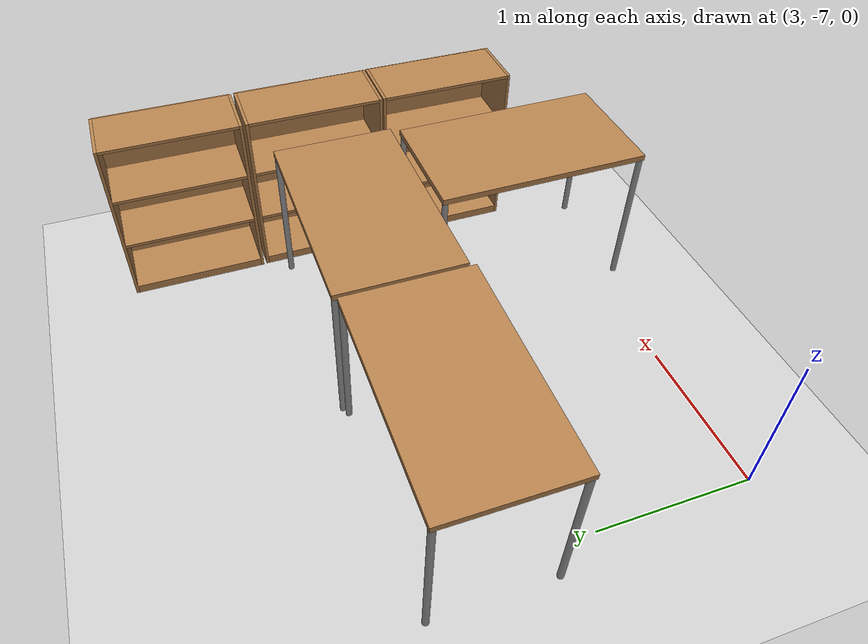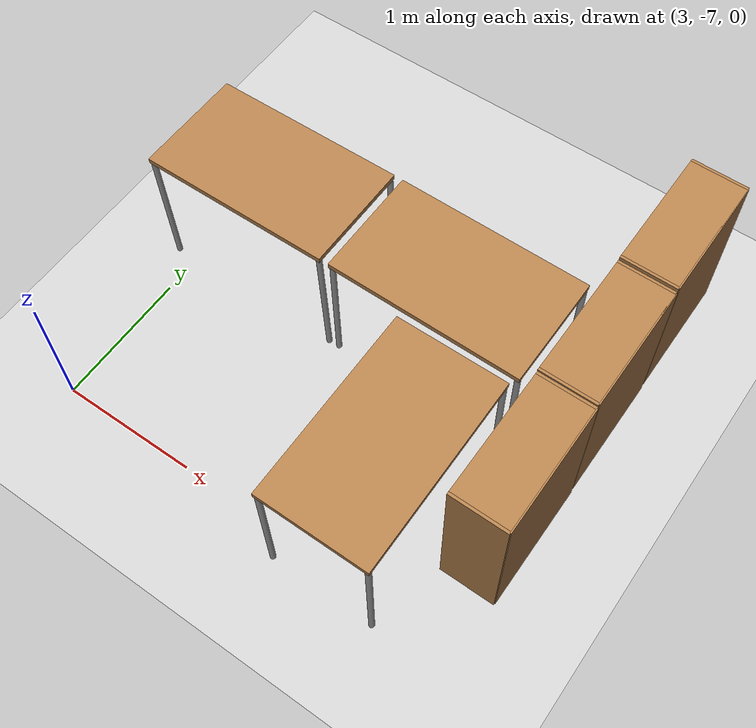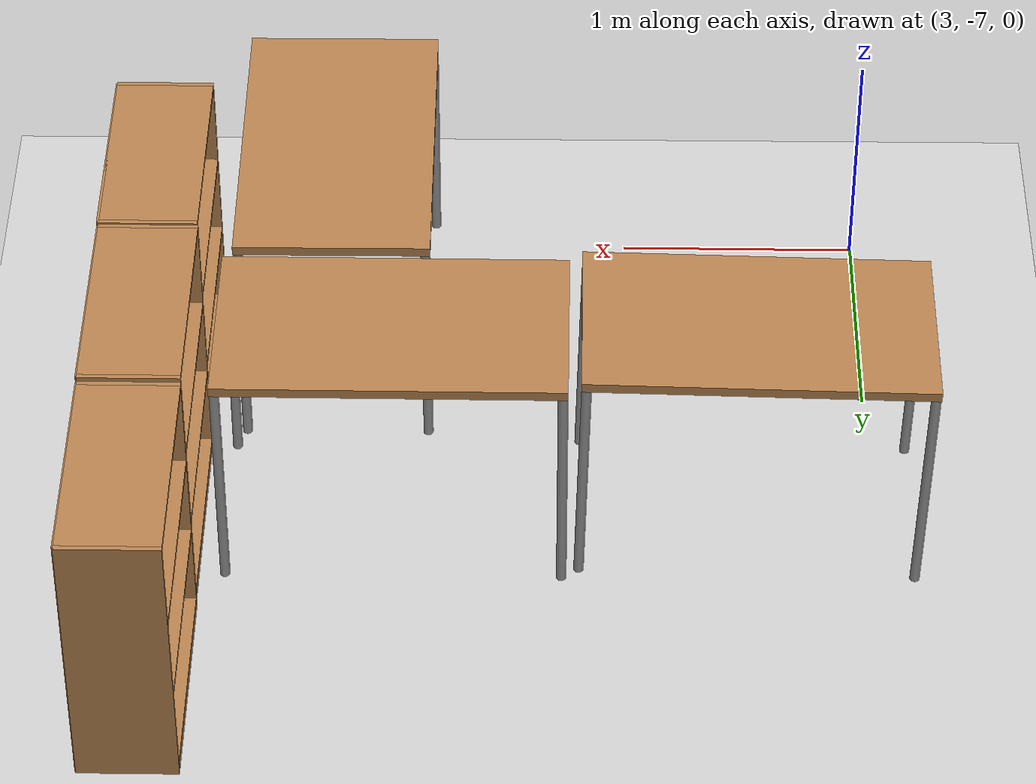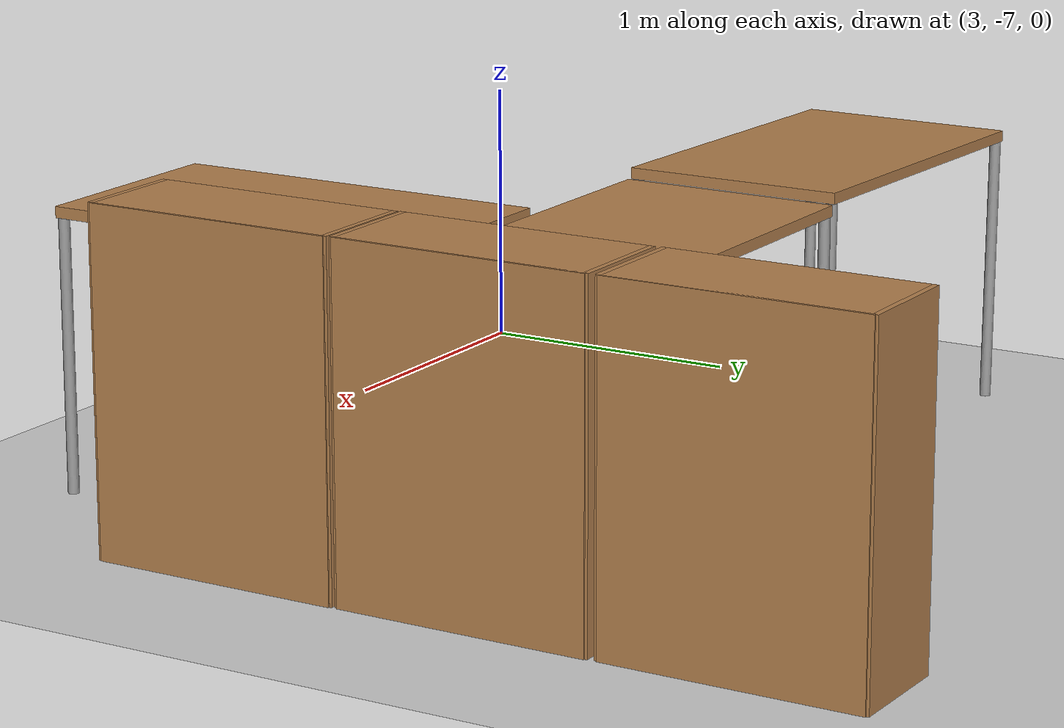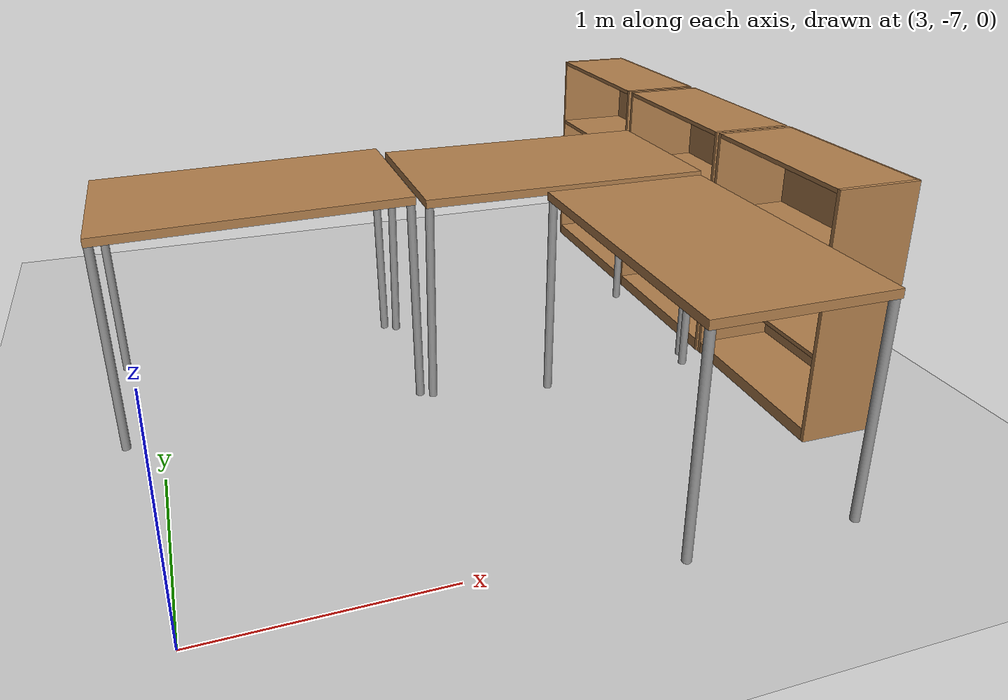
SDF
<sdf version="1.6">
 <world name="default">
  <model name="ground_plane">
   <static>1</static>
   <link name="link">
    <collision name="collision">
     <geometry><plane><normal>0 0 1</normal><size>100 100</size></plane></geometry>
     <surface><friction><ode><mu>100</mu><mu2>50</mu2></ode></friction></surface>
    </collision>
    <visual name="visual">
     <cast_shadows>0</cast_shadows>
     <geometry><plane><normal>0 0 1</normal><size>100 100</size></plane></geometry>
     <material>
      <script><uri>file://media/materials/scripts/gazebo.material</uri><name>Gazebo/Grey</name></script>
     </material>
    </visual>
   </link>
  </model>
  <model name="bookshelf_sidepose_clone_0">
   <link name="link">
    <pose>0.214811 -0.123316 0 0 0 -1.57547</pose>
    <inertial><mass>1</mass></inertial>
    <visual name="visual1">
     <pose>0 0.005 0.6 0 -0 0</pose>
     <geometry><box><size>0.9 0.01 1.2</size></box></geometry>
     <material>
      <script><uri>file://media/materials/scripts/gazebo.material</uri><name>Gazebo/Wood</name></script>
      <ambient>1 1 1 1</ambient>
      <diffuse>1 1 1 1</diffuse>
      <specular>0.2 0.2 0.2 1</specular>
      <emissive>0 0 0 1</emissive>
     </material>
    </visual>
    <visual name="visual2">
     <pose>0.45 -0.195 0.6 0 -0 0</pose>
     <geometry><box><size>0.02 0.4 1.2</size></box></geometry>
     <material>
      <script><uri>file://media/materials/scripts/gazebo.material</uri><name>Gazebo/Wood</name></script>
      <ambient>1 1 1 1</ambient>
      <diffuse>1 1 1 1</diffuse>
      <specular>0.2 0.2 0.2 1</specular>
      <emissive>0 0 0 1</emissive>
     </material>
    </visual>
    <visual name="visual3">
     <pose>-0.45 -0.195 0.6 0 -0 0</pose>
     <geometry><box><size>0.02 0.4 1.2</size></box></geometry>
     <material>
      <script><uri>file://media/materials/scripts/gazebo.material</uri><name>Gazebo/Wood</name></script>
      <ambient>1 1 1 1</ambient>
      <diffuse>1 1 1 1</diffuse>
      <specular>0.2 0.2 0.2 1</specular>
      <emissive>0 0 0 1</emissive>
     </material>
    </visual>
    <visual name="visual4">
     <pose>0 -0.195 0.03 0 -0 0</pose>
     <geometry><box><size>0.88 0.4 0.06</size></box></geometry>
     <material>
      <script><uri>file://media/materials/scripts/gazebo.material</uri><name>Gazebo/Wood</name></script>
      <ambient>1 1 1 1</ambient>
      <diffuse>1 1 1 1</diffuse>
      <specular>0.2 0.2 0.2 1</specular>
      <emissive>0 0 0 1</emissive>
     </material>
    </visual>
    <visual name="visual6">
     <pose>0 -0.195 0.43 0 -0 0</pose>
     <geometry><box><size>0.88 0.4 0.02</size></box></geometry>
     <material>
      <script><uri>file://media/materials/scripts/gazebo.material</uri><name>Gazebo/Wood</name></script>
      <ambient>1 1 1 1</ambient>
      <diffuse>1 1 1 1</diffuse>
      <specular>0.2 0.2 0.2 1</specular>
      <emissive>0 0 0 1</emissive>
     </material>
    </visual>
    <visual name="visual5">
     <pose>0 -0.195 1.19 0 -0 0</pose>
     <geometry><box><size>0.88 0.4 0.02</size></box></geometry>
     <material>
      <script><uri>file://media/materials/scripts/gazebo.material</uri><name>Gazebo/Wood</name></script>
      <ambient>1 1 1 1</ambient>
      <diffuse>1 1 1 1</diffuse>
      <specular>0.2 0.2 0.2 1</specular>
      <emissive>0 0 0 1</emissive>
     </material>
    </visual>
    <visual name="visual7">
     <pose>0 -0.195 0.8 0 -0 0</pose>
     <geometry><box><size>0.88 0.4 0.02</size></box></geometry>
     <material>
      <script><uri>file://media/materials/scripts/gazebo.material</uri><name>Gazebo/Wood</name></script>
      <ambient>1 1 1 1</ambient>
      <diffuse>1 1 1 1</diffuse>
      <specular>0.2 0.2 0.2 1</specular>
      <emissive>0 0 0 1</emissive>
     </material>
    </visual>
    <collision name="back">
     <pose>0 0.005 0.6 0 -0 0</pose>
     <geometry><box><size>0.9 0.01 1.2</size></box></geometry>
     <surface>
      <friction>
       <ode><mu>1</mu><mu2>1</mu2><fdir1>0 0 0</fdir1><slip1>0</slip1><slip2>0</slip2></ode>
       <torsional>
        <coefficient>1</coefficient>
        <patch_radius>0</patch_radius>
        <surface_radius>0</surface_radius>
        <use_patch_radius>1</use_patch_radius>
        <ode><slip>0</slip></ode>
       </torsional>
      </friction>
      <bounce><restitution_coefficient>0</restitution_coefficient><threshold>1e+06</threshold></bounce>
      <contact>
       <collide_without_contact>0</collide_without_contact>
       <collide_without_contact_bitmask>1</collide_without_contact_bitmask>
       <collide_bitmask>1</collide_bitmask>
       <ode>
        <soft_cfm>0</soft_cfm>
        <soft_erp>0.2</soft_erp>
        <kp>1e+13</kp>
        <kd>1</kd>
        <max_vel>0.01</max_vel>
        <min_depth>0</min_depth>
       </ode>
       <bullet>
        <split_impulse>1</split_impulse>
        <split_impulse_penetration_threshold>-0.01</split_impulse_penetration_threshold>
        <soft_cfm>0</soft_cfm>
        <soft_erp>0.2</soft_erp>
        <kp>1e+13</kp>
        <kd>1</kd>
       </bullet>
      </contact>
     </surface>
    </collision>
    <collision name="left_side">
     <pose>0.45 -0.195 0.6 0 -0 0</pose>
     <geometry><box><size>0.02 0.4 1.2</size></box></geometry>
     <surface>
      <friction>
       <ode><mu>1</mu><mu2>1</mu2><fdir1>0 0 0</fdir1><slip1>0</slip1><slip2>0</slip2></ode>
       <torsional>
        <coefficient>1</coefficient>
        <patch_radius>0</patch_radius>
        <surface_radius>0</surface_radius>
        <use_patch_radius>1</use_patch_radius>
        <ode><slip>0</slip></ode>
       </torsional>
      </friction>
      <bounce><restitution_coefficient>0</restitution_coefficient><threshold>1e+06</threshold></bounce>
      <contact>
       <collide_without_contact>0</collide_without_contact>
       <collide_without_contact_bitmask>1</collide_without_contact_bitmask>
       <collide_bitmask>1</collide_bitmask>
       <ode>
        <soft_cfm>0</soft_cfm>
        <soft_erp>0.2</soft_erp>
        <kp>1e+13</kp>
        <kd>1</kd>
        <max_vel>0.01</max_vel>
        <min_depth>0</min_depth>
       </ode>
       <bullet>
        <split_impulse>1</split_impulse>
        <split_impulse_penetration_threshold>-0.01</split_impulse_penetration_threshold>
        <soft_cfm>0</soft_cfm>
        <soft_erp>0.2</soft_erp>
        <kp>1e+13</kp>
        <kd>1</kd>
       </bullet>
      </contact>
     </surface>
    </collision>
    <collision name="right_side">
     <pose>-0.45 -0.195 0.6 0 -0 0</pose>
     <geometry><box><size>0.02 0.4 1.2</size></box></geometry>
     <surface>
      <friction>
       <ode><mu>1</mu><mu2>1</mu2><fdir1>0 0 0</fdir1><slip1>0</slip1><slip2>0</slip2></ode>
       <torsional>
        <coefficient>1</coefficient>
        <patch_radius>0</patch_radius>
        <surface_radius>0</surface_radius>
        <use_patch_radius>1</use_patch_radius>
        <ode><slip>0</slip></ode>
       </torsional>
      </friction>
      <bounce><restitution_coefficient>0</restitution_coefficient><threshold>1e+06</threshold></bounce>
      <contact>
       <collide_without_contact>0</collide_without_contact>
       <collide_without_contact_bitmask>1</collide_without_contact_bitmask>
       <collide_bitmask>1</collide_bitmask>
       <ode>
        <soft_cfm>0</soft_cfm>
        <soft_erp>0.2</soft_erp>
        <kp>1e+13</kp>
        <kd>1</kd>
        <max_vel>0.01</max_vel>
        <min_depth>0</min_depth>
       </ode>
       <bullet>
        <split_impulse>1</split_impulse>
        <split_impulse_penetration_threshold>-0.01</split_impulse_penetration_threshold>
        <soft_cfm>0</soft_cfm>
        <soft_erp>0.2</soft_erp>
        <kp>1e+13</kp>
        <kd>1</kd>
       </bullet>
      </contact>
     </surface>
    </collision>
    <collision name="bottom">
     <pose>0 -0.195 0.03 0 -0 0</pose>
     <geometry><box><size>0.88 0.4 0.06</size></box></geometry>
     <surface>
      <friction>
       <ode><mu>1</mu><mu2>1</mu2><fdir1>0 0 0</fdir1><slip1>0</slip1><slip2>0</slip2></ode>
       <torsional>
        <coefficient>1</coefficient>
        <patch_radius>0</patch_radius>
        <surface_radius>0</surface_radius>
        <use_patch_radius>1</use_patch_radius>
        <ode><slip>0</slip></ode>
       </torsional>
      </friction>
      <bounce><restitution_coefficient>0</restitution_coefficient><threshold>1e+06</threshold></bounce>
      <contact>
       <collide_without_contact>0</collide_without_contact>
       <collide_without_contact_bitmask>1</collide_without_contact_bitmask>
       <collide_bitmask>1</collide_bitmask>
       <ode>
        <soft_cfm>0</soft_cfm>
        <soft_erp>0.2</soft_erp>
        <kp>1e+13</kp>
        <kd>1</kd>
        <max_vel>0.01</max_vel>
        <min_depth>0</min_depth>
       </ode>
       <bullet>
        <split_impulse>1</split_impulse>
        <split_impulse_penetration_threshold>-0.01</split_impulse_penetration_threshold>
        <soft_cfm>0</soft_cfm>
        <soft_erp>0.2</soft_erp>
        <kp>1e+13</kp>
        <kd>1</kd>
       </bullet>
      </contact>
     </surface>
    </collision>
    <collision name="low_shelf">
     <pose>0 -0.195 0.43 0 -0 0</pose>
     <geometry><box><size>0.88 0.4 0.02</size></box></geometry>
     <surface>
      <friction>
       <ode><mu>1</mu><mu2>1</mu2><fdir1>0 0 0</fdir1><slip1>0</slip1><slip2>0</slip2></ode>
       <torsional>
        <coefficient>1</coefficient>
        <patch_radius>0</patch_radius>
        <surface_radius>0</surface_radius>
        <use_patch_radius>1</use_patch_radius>
        <ode><slip>0</slip></ode>
       </torsional>
      </friction>
      <bounce><restitution_coefficient>0</restitution_coefficient><threshold>1e+06</threshold></bounce>
      <contact>
       <collide_without_contact>0</collide_without_contact>
       <collide_without_contact_bitmask>1</collide_without_contact_bitmask>
       <collide_bitmask>1</collide_bitmask>
       <ode>
        <soft_cfm>0</soft_cfm>
        <soft_erp>0.2</soft_erp>
        <kp>1e+13</kp>
        <kd>1</kd>
        <max_vel>0.01</max_vel>
        <min_depth>0</min_depth>
       </ode>
       <bullet>
        <split_impulse>1</split_impulse>
        <split_impulse_penetration_threshold>-0.01</split_impulse_penetration_threshold>
        <soft_cfm>0</soft_cfm>
        <soft_erp>0.2</soft_erp>
        <kp>1e+13</kp>
        <kd>1</kd>
       </bullet>
      </contact>
     </surface>
    </collision>
    <collision name="top">
     <pose>0 -0.195 1.19 0 -0 0</pose>
     <geometry><box><size>0.88 0.4 0.02</size></box></geometry>
     <surface>
      <friction>
       <ode><mu>1</mu><mu2>1</mu2><fdir1>0 0 0</fdir1><slip1>0</slip1><slip2>0</slip2></ode>
       <torsional>
        <coefficient>1</coefficient>
        <patch_radius>0</patch_radius>
        <surface_radius>0</surface_radius>
        <use_patch_radius>1</use_patch_radius>
        <ode><slip>0</slip></ode>
       </torsional>
      </friction>
      <bounce><restitution_coefficient>0</restitution_coefficient><threshold>1e+06</threshold></bounce>
      <contact>
       <collide_without_contact>0</collide_without_contact>
       <collide_without_contact_bitmask>1</collide_without_contact_bitmask>
       <collide_bitmask>1</collide_bitmask>
       <ode>
        <soft_cfm>0</soft_cfm>
        <soft_erp>0.2</soft_erp>
        <kp>1e+13</kp>
        <kd>1</kd>
        <max_vel>0.01</max_vel>
        <min_depth>0</min_depth>
       </ode>
       <bullet>
        <split_impulse>1</split_impulse>
        <split_impulse_penetration_threshold>-0.01</split_impulse_penetration_threshold>
        <soft_cfm>0</soft_cfm>
        <soft_erp>0.2</soft_erp>
        <kp>1e+13</kp>
        <kd>1</kd>
       </bullet>
      </contact>
     </surface>
    </collision>
    <collision name="high_shelf">
     <pose>0 -0.195 0.8 0 -0 0</pose>
     <geometry><box><size>0.88 0.4 0.02</size></box></geometry>
     <surface>
      <friction>
       <ode><mu>1</mu><mu2>1</mu2><fdir1>0 0 0</fdir1><slip1>0</slip1><slip2>0</slip2></ode>
       <torsional>
        <coefficient>1</coefficient>
        <patch_radius>0</patch_radius>
        <surface_radius>0</surface_radius>
        <use_patch_radius>1</use_patch_radius>
        <ode><slip>0</slip></ode>
       </torsional>
      </friction>
      <bounce><restitution_coefficient>0</restitution_coefficient><threshold>1e+06</threshold></bounce>
      <contact>
       <collide_without_contact>0</collide_without_contact>
       <collide_without_contact_bitmask>1</collide_without_contact_bitmask>
       <collide_bitmask>1</collide_bitmask>
       <ode>
        <soft_cfm>0</soft_cfm>
        <soft_erp>0.2</soft_erp>
        <kp>1e+13</kp>
        <kd>1</kd>
        <max_vel>0.01</max_vel>
        <min_depth>0</min_depth>
       </ode>
       <bullet>
        <split_impulse>1</split_impulse>
        <split_impulse_penetration_threshold>-0.01</split_impulse_penetration_threshold>
        <soft_cfm>0</soft_cfm>
        <soft_erp>0.2</soft_erp>
        <kp>1e+13</kp>
        <kd>1</kd>
       </bullet>
      </contact>
     </surface>
    </collision>
   </link>
   <static>1</static>
   <pose>5.91709 -6.04119 0 0 -0 0</pose>
  </model>
  <model name="bookshelf_sidepose_clone_1">
   <link name="link">
    <pose>0.214811 -0.123316 0 0 0 -1.57547</pose>
    <inertial><mass>1</mass></inertial>
    <visual name="visual1">
     <pose>0 0.005 0.6 0 -0 0</pose>
     <geometry><box><size>0.9 0.01 1.2</size></box></geometry>
     <material>
      <script><uri>file://media/materials/scripts/gazebo.material</uri><name>Gazebo/Wood</name></script>
      <ambient>1 1 1 1</ambient>
      <diffuse>1 1 1 1</diffuse>
      <specular>0.2 0.2 0.2 1</specular>
      <emissive>0 0 0 1</emissive>
     </material>
    </visual>
    <visual name="visual2">
     <pose>0.45 -0.195 0.6 0 -0 0</pose>
     <geometry><box><size>0.02 0.4 1.2</size></box></geometry>
     <material>
      <script><uri>file://media/materials/scripts/gazebo.material</uri><name>Gazebo/Wood</name></script>
      <ambient>1 1 1 1</ambient>
      <diffuse>1 1 1 1</diffuse>
      <specular>0.2 0.2 0.2 1</specular>
      <emissive>0 0 0 1</emissive>
     </material>
    </visual>
    <visual name="visual3">
     <pose>-0.45 -0.195 0.6 0 -0 0</pose>
     <geometry><box><size>0.02 0.4 1.2</size></box></geometry>
     <material>
      <script><uri>file://media/materials/scripts/gazebo.material</uri><name>Gazebo/Wood</name></script>
      <ambient>1 1 1 1</ambient>
      <diffuse>1 1 1 1</diffuse>
      <specular>0.2 0.2 0.2 1</specular>
      <emissive>0 0 0 1</emissive>
     </material>
    </visual>
    <visual name="visual4">
     <pose>0 -0.195 0.03 0 -0 0</pose>
     <geometry><box><size>0.88 0.4 0.06</size></box></geometry>
     <material>
      <script><uri>file://media/materials/scripts/gazebo.material</uri><name>Gazebo/Wood</name></script>
      <ambient>1 1 1 1</ambient>
      <diffuse>1 1 1 1</diffuse>
      <specular>0.2 0.2 0.2 1</specular>
      <emissive>0 0 0 1</emissive>
     </material>
    </visual>
    <visual name="visual6">
     <pose>0 -0.195 0.43 0 -0 0</pose>
     <geometry><box><size>0.88 0.4 0.02</size></box></geometry>
     <material>
      <script><uri>file://media/materials/scripts/gazebo.material</uri><name>Gazebo/Wood</name></script>
      <ambient>1 1 1 1</ambient>
      <diffuse>1 1 1 1</diffuse>
      <specular>0.2 0.2 0.2 1</specular>
      <emissive>0 0 0 1</emissive>
     </material>
    </visual>
    <visual name="visual5">
     <pose>0 -0.195 1.19 0 -0 0</pose>
     <geometry><box><size>0.88 0.4 0.02</size></box></geometry>
     <material>
      <script><uri>file://media/materials/scripts/gazebo.material</uri><name>Gazebo/Wood</name></script>
      <ambient>1 1 1 1</ambient>
      <diffuse>1 1 1 1</diffuse>
      <specular>0.2 0.2 0.2 1</specular>
      <emissive>0 0 0 1</emissive>
     </material>
    </visual>
    <visual name="visual7">
     <pose>0 -0.195 0.8 0 -0 0</pose>
     <geometry><box><size>0.88 0.4 0.02</size></box></geometry>
     <material>
      <script><uri>file://media/materials/scripts/gazebo.material</uri><name>Gazebo/Wood</name></script>
      <ambient>1 1 1 1</ambient>
      <diffuse>1 1 1 1</diffuse>
      <specular>0.2 0.2 0.2 1</specular>
      <emissive>0 0 0 1</emissive>
     </material>
    </visual>
    <collision name="back">
     <pose>0 0.005 0.6 0 -0 0</pose>
     <geometry><box><size>0.9 0.01 1.2</size></box></geometry>
     <surface>
      <friction>
       <ode><mu>1</mu><mu2>1</mu2><fdir1>0 0 0</fdir1><slip1>0</slip1><slip2>0</slip2></ode>
       <torsional>
        <coefficient>1</coefficient>
        <patch_radius>0</patch_radius>
        <surface_radius>0</surface_radius>
        <use_patch_radius>1</use_patch_radius>
        <ode><slip>0</slip></ode>
       </torsional>
      </friction>
      <bounce><restitution_coefficient>0</restitution_coefficient><threshold>1e+06</threshold></bounce>
      <contact>
       <collide_without_contact>0</collide_without_contact>
       <collide_without_contact_bitmask>1</collide_without_contact_bitmask>
       <collide_bitmask>1</collide_bitmask>
       <ode>
        <soft_cfm>0</soft_cfm>
        <soft_erp>0.2</soft_erp>
        <kp>1e+13</kp>
        <kd>1</kd>
        <max_vel>0.01</max_vel>
        <min_depth>0</min_depth>
       </ode>
       <bullet>
        <split_impulse>1</split_impulse>
        <split_impulse_penetration_threshold>-0.01</split_impulse_penetration_threshold>
        <soft_cfm>0</soft_cfm>
        <soft_erp>0.2</soft_erp>
        <kp>1e+13</kp>
        <kd>1</kd>
       </bullet>
      </contact>
     </surface>
    </collision>
    <collision name="left_side">
     <pose>0.45 -0.195 0.6 0 -0 0</pose>
     <geometry><box><size>0.02 0.4 1.2</size></box></geometry>
     <surface>
      <friction>
       <ode><mu>1</mu><mu2>1</mu2><fdir1>0 0 0</fdir1><slip1>0</slip1><slip2>0</slip2></ode>
       <torsional>
        <coefficient>1</coefficient>
        <patch_radius>0</patch_radius>
        <surface_radius>0</surface_radius>
        <use_patch_radius>1</use_patch_radius>
        <ode><slip>0</slip></ode>
       </torsional>
      </friction>
      <bounce><restitution_coefficient>0</restitution_coefficient><threshold>1e+06</threshold></bounce>
      <contact>
       <collide_without_contact>0</collide_without_contact>
       <collide_without_contact_bitmask>1</collide_without_contact_bitmask>
       <collide_bitmask>1</collide_bitmask>
       <ode>
        <soft_cfm>0</soft_cfm>
        <soft_erp>0.2</soft_erp>
        <kp>1e+13</kp>
        <kd>1</kd>
        <max_vel>0.01</max_vel>
        <min_depth>0</min_depth>
       </ode>
       <bullet>
        <split_impulse>1</split_impulse>
        <split_impulse_penetration_threshold>-0.01</split_impulse_penetration_threshold>
        <soft_cfm>0</soft_cfm>
        <soft_erp>0.2</soft_erp>
        <kp>1e+13</kp>
        <kd>1</kd>
       </bullet>
      </contact>
     </surface>
    </collision>
    <collision name="right_side">
     <pose>-0.45 -0.195 0.6 0 -0 0</pose>
     <geometry><box><size>0.02 0.4 1.2</size></box></geometry>
     <surface>
      <friction>
       <ode><mu>1</mu><mu2>1</mu2><fdir1>0 0 0</fdir1><slip1>0</slip1><slip2>0</slip2></ode>
       <torsional>
        <coefficient>1</coefficient>
        <patch_radius>0</patch_radius>
        <surface_radius>0</surface_radius>
        <use_patch_radius>1</use_patch_radius>
        <ode><slip>0</slip></ode>
       </torsional>
      </friction>
      <bounce><restitution_coefficient>0</restitution_coefficient><threshold>1e+06</threshold></bounce>
      <contact>
       <collide_without_contact>0</collide_without_contact>
       <collide_without_contact_bitmask>1</collide_without_contact_bitmask>
       <collide_bitmask>1</collide_bitmask>
       <ode>
        <soft_cfm>0</soft_cfm>
        <soft_erp>0.2</soft_erp>
        <kp>1e+13</kp>
        <kd>1</kd>
        <max_vel>0.01</max_vel>
        <min_depth>0</min_depth>
       </ode>
       <bullet>
        <split_impulse>1</split_impulse>
        <split_impulse_penetration_threshold>-0.01</split_impulse_penetration_threshold>
        <soft_cfm>0</soft_cfm>
        <soft_erp>0.2</soft_erp>
        <kp>1e+13</kp>
        <kd>1</kd>
       </bullet>
      </contact>
     </surface>
    </collision>
    <collision name="bottom">
     <pose>0 -0.195 0.03 0 -0 0</pose>
     <geometry><box><size>0.88 0.4 0.06</size></box></geometry>
     <surface>
      <friction>
       <ode><mu>1</mu><mu2>1</mu2><fdir1>0 0 0</fdir1><slip1>0</slip1><slip2>0</slip2></ode>
       <torsional>
        <coefficient>1</coefficient>
        <patch_radius>0</patch_radius>
        <surface_radius>0</surface_radius>
        <use_patch_radius>1</use_patch_radius>
        <ode><slip>0</slip></ode>
       </torsional>
      </friction>
      <bounce><restitution_coefficient>0</restitution_coefficient><threshold>1e+06</threshold></bounce>
      <contact>
       <collide_without_contact>0</collide_without_contact>
       <collide_without_contact_bitmask>1</collide_without_contact_bitmask>
       <collide_bitmask>1</collide_bitmask>
       <ode>
        <soft_cfm>0</soft_cfm>
        <soft_erp>0.2</soft_erp>
        <kp>1e+13</kp>
        <kd>1</kd>
        <max_vel>0.01</max_vel>
        <min_depth>0</min_depth>
       </ode>
       <bullet>
        <split_impulse>1</split_impulse>
        <split_impulse_penetration_threshold>-0.01</split_impulse_penetration_threshold>
        <soft_cfm>0</soft_cfm>
        <soft_erp>0.2</soft_erp>
        <kp>1e+13</kp>
        <kd>1</kd>
       </bullet>
      </contact>
     </surface>
    </collision>
    <collision name="low_shelf">
     <pose>0 -0.195 0.43 0 -0 0</pose>
     <geometry><box><size>0.88 0.4 0.02</size></box></geometry>
     <surface>
      <friction>
       <ode><mu>1</mu><mu2>1</mu2><fdir1>0 0 0</fdir1><slip1>0</slip1><slip2>0</slip2></ode>
       <torsional>
        <coefficient>1</coefficient>
        <patch_radius>0</patch_radius>
        <surface_radius>0</surface_radius>
        <use_patch_radius>1</use_patch_radius>
        <ode><slip>0</slip></ode>
       </torsional>
      </friction>
      <bounce><restitution_coefficient>0</restitution_coefficient><threshold>1e+06</threshold></bounce>
      <contact>
       <collide_without_contact>0</collide_without_contact>
       <collide_without_contact_bitmask>1</collide_without_contact_bitmask>
       <collide_bitmask>1</collide_bitmask>
       <ode>
        <soft_cfm>0</soft_cfm>
        <soft_erp>0.2</soft_erp>
        <kp>1e+13</kp>
        <kd>1</kd>
        <max_vel>0.01</max_vel>
        <min_depth>0</min_depth>
       </ode>
       <bullet>
        <split_impulse>1</split_impulse>
        <split_impulse_penetration_threshold>-0.01</split_impulse_penetration_threshold>
        <soft_cfm>0</soft_cfm>
        <soft_erp>0.2</soft_erp>
        <kp>1e+13</kp>
        <kd>1</kd>
       </bullet>
      </contact>
     </surface>
    </collision>
    <collision name="top">
     <pose>0 -0.195 1.19 0 -0 0</pose>
     <geometry><box><size>0.88 0.4 0.02</size></box></geometry>
     <surface>
      <friction>
       <ode><mu>1</mu><mu2>1</mu2><fdir1>0 0 0</fdir1><slip1>0</slip1><slip2>0</slip2></ode>
       <torsional>
        <coefficient>1</coefficient>
        <patch_radius>0</patch_radius>
        <surface_radius>0</surface_radius>
        <use_patch_radius>1</use_patch_radius>
        <ode><slip>0</slip></ode>
       </torsional>
      </friction>
      <bounce><restitution_coefficient>0</restitution_coefficient><threshold>1e+06</threshold></bounce>
      <contact>
       <collide_without_contact>0</collide_without_contact>
       <collide_without_contact_bitmask>1</collide_without_contact_bitmask>
       <collide_bitmask>1</collide_bitmask>
       <ode>
        <soft_cfm>0</soft_cfm>
        <soft_erp>0.2</soft_erp>
        <kp>1e+13</kp>
        <kd>1</kd>
        <max_vel>0.01</max_vel>
        <min_depth>0</min_depth>
       </ode>
       <bullet>
        <split_impulse>1</split_impulse>
        <split_impulse_penetration_threshold>-0.01</split_impulse_penetration_threshold>
        <soft_cfm>0</soft_cfm>
        <soft_erp>0.2</soft_erp>
        <kp>1e+13</kp>
        <kd>1</kd>
       </bullet>
      </contact>
     </surface>
    </collision>
    <collision name="high_shelf">
     <pose>0 -0.195 0.8 0 -0 0</pose>
     <geometry><box><size>0.88 0.4 0.02</size></box></geometry>
     <surface>
      <friction>
       <ode><mu>1</mu><mu2>1</mu2><fdir1>0 0 0</fdir1><slip1>0</slip1><slip2>0</slip2></ode>
       <torsional>
        <coefficient>1</coefficient>
        <patch_radius>0</patch_radius>
        <surface_radius>0</surface_radius>
        <use_patch_radius>1</use_patch_radius>
        <ode><slip>0</slip></ode>
       </torsional>
      </friction>
      <bounce><restitution_coefficient>0</restitution_coefficient><threshold>1e+06</threshold></bounce>
      <contact>
       <collide_without_contact>0</collide_without_contact>
       <collide_without_contact_bitmask>1</collide_without_contact_bitmask>
       <collide_bitmask>1</collide_bitmask>
       <ode>
        <soft_cfm>0</soft_cfm>
        <soft_erp>0.2</soft_erp>
        <kp>1e+13</kp>
        <kd>1</kd>
        <max_vel>0.01</max_vel>
        <min_depth>0</min_depth>
       </ode>
       <bullet>
        <split_impulse>1</split_impulse>
        <split_impulse_penetration_threshold>-0.01</split_impulse_penetration_threshold>
        <soft_cfm>0</soft_cfm>
        <soft_erp>0.2</soft_erp>
        <kp>1e+13</kp>
        <kd>1</kd>
       </bullet>
      </contact>
     </surface>
    </collision>
   </link>
   <static>1</static>
   <pose>5.91709 -5.11369 0 0 -0 0</pose>
  </model>
  <model name="bookshelf_sidepose_clone_2">
   <link name="link">
    <pose>0.214811 -0.123316 0 0 0 -1.57547</pose>
    <inertial><mass>1</mass></inertial>
    <visual name="visual1">
     <pose>0 0.005 0.6 0 -0 0</pose>
     <geometry><box><size>0.9 0.01 1.2</size></box></geometry>
     <material>
      <script><uri>file://media/materials/scripts/gazebo.material</uri><name>Gazebo/Wood</name></script>
      <ambient>1 1 1 1</ambient>
      <diffuse>1 1 1 1</diffuse>
      <specular>0.2 0.2 0.2 1</specular>
      <emissive>0 0 0 1</emissive>
     </material>
    </visual>
    <visual name="visual2">
     <pose>0.45 -0.195 0.6 0 -0 0</pose>
     <geometry><box><size>0.02 0.4 1.2</size></box></geometry>
     <material>
      <script><uri>file://media/materials/scripts/gazebo.material</uri><name>Gazebo/Wood</name></script>
      <ambient>1 1 1 1</ambient>
      <diffuse>1 1 1 1</diffuse>
      <specular>0.2 0.2 0.2 1</specular>
      <emissive>0 0 0 1</emissive>
     </material>
    </visual>
    <visual name="visual3">
     <pose>-0.45 -0.195 0.6 0 -0 0</pose>
     <geometry><box><size>0.02 0.4 1.2</size></box></geometry>
     <material>
      <script><uri>file://media/materials/scripts/gazebo.material</uri><name>Gazebo/Wood</name></script>
      <ambient>1 1 1 1</ambient>
      <diffuse>1 1 1 1</diffuse>
      <specular>0.2 0.2 0.2 1</specular>
      <emissive>0 0 0 1</emissive>
     </material>
    </visual>
    <visual name="visual4">
     <pose>0 -0.195 0.03 0 -0 0</pose>
     <geometry><box><size>0.88 0.4 0.06</size></box></geometry>
     <material>
      <script><uri>file://media/materials/scripts/gazebo.material</uri><name>Gazebo/Wood</name></script>
      <ambient>1 1 1 1</ambient>
      <diffuse>1 1 1 1</diffuse>
      <specular>0.2 0.2 0.2 1</specular>
      <emissive>0 0 0 1</emissive>
     </material>
    </visual>
    <visual name="visual6">
     <pose>0 -0.195 0.43 0 -0 0</pose>
     <geometry><box><size>0.88 0.4 0.02</size></box></geometry>
     <material>
      <script><uri>file://media/materials/scripts/gazebo.material</uri><name>Gazebo/Wood</name></script>
      <ambient>1 1 1 1</ambient>
      <diffuse>1 1 1 1</diffuse>
      <specular>0.2 0.2 0.2 1</specular>
      <emissive>0 0 0 1</emissive>
     </material>
    </visual>
    <visual name="visual5">
     <pose>0 -0.195 1.19 0 -0 0</pose>
     <geometry><box><size>0.88 0.4 0.02</size></box></geometry>
     <material>
      <script><uri>file://media/materials/scripts/gazebo.material</uri><name>Gazebo/Wood</name></script>
      <ambient>1 1 1 1</ambient>
      <diffuse>1 1 1 1</diffuse>
      <specular>0.2 0.2 0.2 1</specular>
      <emissive>0 0 0 1</emissive>
     </material>
    </visual>
    <visual name="visual7">
     <pose>0 -0.195 0.8 0 -0 0</pose>
     <geometry><box><size>0.88 0.4 0.02</size></box></geometry>
     <material>
      <script><uri>file://media/materials/scripts/gazebo.material</uri><name>Gazebo/Wood</name></script>
      <ambient>1 1 1 1</ambient>
      <diffuse>1 1 1 1</diffuse>
      <specular>0.2 0.2 0.2 1</specular>
      <emissive>0 0 0 1</emissive>
     </material>
    </visual>
    <collision name="back">
     <pose>0 0.005 0.6 0 -0 0</pose>
     <geometry><box><size>0.9 0.01 1.2</size></box></geometry>
     <surface>
      <friction>
       <ode><mu>1</mu><mu2>1</mu2><fdir1>0 0 0</fdir1><slip1>0</slip1><slip2>0</slip2></ode>
       <torsional>
        <coefficient>1</coefficient>
        <patch_radius>0</patch_radius>
        <surface_radius>0</surface_radius>
        <use_patch_radius>1</use_patch_radius>
        <ode><slip>0</slip></ode>
       </torsional>
      </friction>
      <bounce><restitution_coefficient>0</restitution_coefficient><threshold>1e+06</threshold></bounce>
      <contact>
       <collide_without_contact>0</collide_without_contact>
       <collide_without_contact_bitmask>1</collide_without_contact_bitmask>
       <collide_bitmask>1</collide_bitmask>
       <ode>
        <soft_cfm>0</soft_cfm>
        <soft_erp>0.2</soft_erp>
        <kp>1e+13</kp>
        <kd>1</kd>
        <max_vel>0.01</max_vel>
        <min_depth>0</min_depth>
       </ode>
       <bullet>
        <split_impulse>1</split_impulse>
        <split_impulse_penetration_threshold>-0.01</split_impulse_penetration_threshold>
        <soft_cfm>0</soft_cfm>
        <soft_erp>0.2</soft_erp>
        <kp>1e+13</kp>
        <kd>1</kd>
       </bullet>
      </contact>
     </surface>
    </collision>
    <collision name="left_side">
     <pose>0.45 -0.195 0.6 0 -0 0</pose>
     <geometry><box><size>0.02 0.4 1.2</size></box></geometry>
     <surface>
      <friction>
       <ode><mu>1</mu><mu2>1</mu2><fdir1>0 0 0</fdir1><slip1>0</slip1><slip2>0</slip2></ode>
       <torsional>
        <coefficient>1</coefficient>
        <patch_radius>0</patch_radius>
        <surface_radius>0</surface_radius>
        <use_patch_radius>1</use_patch_radius>
        <ode><slip>0</slip></ode>
       </torsional>
      </friction>
      <bounce><restitution_coefficient>0</restitution_coefficient><threshold>1e+06</threshold></bounce>
      <contact>
       <collide_without_contact>0</collide_without_contact>
       <collide_without_contact_bitmask>1</collide_without_contact_bitmask>
       <collide_bitmask>1</collide_bitmask>
       <ode>
        <soft_cfm>0</soft_cfm>
        <soft_erp>0.2</soft_erp>
        <kp>1e+13</kp>
        <kd>1</kd>
        <max_vel>0.01</max_vel>
        <min_depth>0</min_depth>
       </ode>
       <bullet>
        <split_impulse>1</split_impulse>
        <split_impulse_penetration_threshold>-0.01</split_impulse_penetration_threshold>
        <soft_cfm>0</soft_cfm>
        <soft_erp>0.2</soft_erp>
        <kp>1e+13</kp>
        <kd>1</kd>
       </bullet>
      </contact>
     </surface>
    </collision>
    <collision name="right_side">
     <pose>-0.45 -0.195 0.6 0 -0 0</pose>
     <geometry><box><size>0.02 0.4 1.2</size></box></geometry>
     <surface>
      <friction>
       <ode><mu>1</mu><mu2>1</mu2><fdir1>0 0 0</fdir1><slip1>0</slip1><slip2>0</slip2></ode>
       <torsional>
        <coefficient>1</coefficient>
        <patch_radius>0</patch_radius>
        <surface_radius>0</surface_radius>
        <use_patch_radius>1</use_patch_radius>
        <ode><slip>0</slip></ode>
       </torsional>
      </friction>
      <bounce><restitution_coefficient>0</restitution_coefficient><threshold>1e+06</threshold></bounce>
      <contact>
       <collide_without_contact>0</collide_without_contact>
       <collide_without_contact_bitmask>1</collide_without_contact_bitmask>
       <collide_bitmask>1</collide_bitmask>
       <ode>
        <soft_cfm>0</soft_cfm>
        <soft_erp>0.2</soft_erp>
        <kp>1e+13</kp>
        <kd>1</kd>
        <max_vel>0.01</max_vel>
        <min_depth>0</min_depth>
       </ode>
       <bullet>
        <split_impulse>1</split_impulse>
        <split_impulse_penetration_threshold>-0.01</split_impulse_penetration_threshold>
        <soft_cfm>0</soft_cfm>
        <soft_erp>0.2</soft_erp>
        <kp>1e+13</kp>
        <kd>1</kd>
       </bullet>
      </contact>
     </surface>
    </collision>
    <collision name="bottom">
     <pose>0 -0.195 0.03 0 -0 0</pose>
     <geometry><box><size>0.88 0.4 0.06</size></box></geometry>
     <surface>
      <friction>
       <ode><mu>1</mu><mu2>1</mu2><fdir1>0 0 0</fdir1><slip1>0</slip1><slip2>0</slip2></ode>
       <torsional>
        <coefficient>1</coefficient>
        <patch_radius>0</patch_radius>
        <surface_radius>0</surface_radius>
        <use_patch_radius>1</use_patch_radius>
        <ode><slip>0</slip></ode>
       </torsional>
      </friction>
      <bounce><restitution_coefficient>0</restitution_coefficient><threshold>1e+06</threshold></bounce>
      <contact>
       <collide_without_contact>0</collide_without_contact>
       <collide_without_contact_bitmask>1</collide_without_contact_bitmask>
       <collide_bitmask>1</collide_bitmask>
       <ode>
        <soft_cfm>0</soft_cfm>
        <soft_erp>0.2</soft_erp>
        <kp>1e+13</kp>
        <kd>1</kd>
        <max_vel>0.01</max_vel>
        <min_depth>0</min_depth>
       </ode>
       <bullet>
        <split_impulse>1</split_impulse>
        <split_impulse_penetration_threshold>-0.01</split_impulse_penetration_threshold>
        <soft_cfm>0</soft_cfm>
        <soft_erp>0.2</soft_erp>
        <kp>1e+13</kp>
        <kd>1</kd>
       </bullet>
      </contact>
     </surface>
    </collision>
    <collision name="low_shelf">
     <pose>0 -0.195 0.43 0 -0 0</pose>
     <geometry><box><size>0.88 0.4 0.02</size></box></geometry>
     <surface>
      <friction>
       <ode><mu>1</mu><mu2>1</mu2><fdir1>0 0 0</fdir1><slip1>0</slip1><slip2>0</slip2></ode>
       <torsional>
        <coefficient>1</coefficient>
        <patch_radius>0</patch_radius>
        <surface_radius>0</surface_radius>
        <use_patch_radius>1</use_patch_radius>
        <ode><slip>0</slip></ode>
       </torsional>
      </friction>
      <bounce><restitution_coefficient>0</restitution_coefficient><threshold>1e+06</threshold></bounce>
      <contact>
       <collide_without_contact>0</collide_without_contact>
       <collide_without_contact_bitmask>1</collide_without_contact_bitmask>
       <collide_bitmask>1</collide_bitmask>
       <ode>
        <soft_cfm>0</soft_cfm>
        <soft_erp>0.2</soft_erp>
        <kp>1e+13</kp>
        <kd>1</kd>
        <max_vel>0.01</max_vel>
        <min_depth>0</min_depth>
       </ode>
       <bullet>
        <split_impulse>1</split_impulse>
        <split_impulse_penetration_threshold>-0.01</split_impulse_penetration_threshold>
        <soft_cfm>0</soft_cfm>
        <soft_erp>0.2</soft_erp>
        <kp>1e+13</kp>
        <kd>1</kd>
       </bullet>
      </contact>
     </surface>
    </collision>
    <collision name="top">
     <pose>0 -0.195 1.19 0 -0 0</pose>
     <geometry><box><size>0.88 0.4 0.02</size></box></geometry>
     <surface>
      <friction>
       <ode><mu>1</mu><mu2>1</mu2><fdir1>0 0 0</fdir1><slip1>0</slip1><slip2>0</slip2></ode>
       <torsional>
        <coefficient>1</coefficient>
        <patch_radius>0</patch_radius>
        <surface_radius>0</surface_radius>
        <use_patch_radius>1</use_patch_radius>
        <ode><slip>0</slip></ode>
       </torsional>
      </friction>
      <bounce><restitution_coefficient>0</restitution_coefficient><threshold>1e+06</threshold></bounce>
      <contact>
       <collide_without_contact>0</collide_without_contact>
       <collide_without_contact_bitmask>1</collide_without_contact_bitmask>
       <collide_bitmask>1</collide_bitmask>
       <ode>
        <soft_cfm>0</soft_cfm>
        <soft_erp>0.2</soft_erp>
        <kp>1e+13</kp>
        <kd>1</kd>
        <max_vel>0.01</max_vel>
        <min_depth>0</min_depth>
       </ode>
       <bullet>
        <split_impulse>1</split_impulse>
        <split_impulse_penetration_threshold>-0.01</split_impulse_penetration_threshold>
        <soft_cfm>0</soft_cfm>
        <soft_erp>0.2</soft_erp>
        <kp>1e+13</kp>
        <kd>1</kd>
       </bullet>
      </contact>
     </surface>
    </collision>
    <collision name="high_shelf">
     <pose>0 -0.195 0.8 0 -0 0</pose>
     <geometry><box><size>0.88 0.4 0.02</size></box></geometry>
     <surface>
      <friction>
       <ode><mu>1</mu><mu2>1</mu2><fdir1>0 0 0</fdir1><slip1>0</slip1><slip2>0</slip2></ode>
       <torsional>
        <coefficient>1</coefficient>
        <patch_radius>0</patch_radius>
        <surface_radius>0</surface_radius>
        <use_patch_radius>1</use_patch_radius>
        <ode><slip>0</slip></ode>
       </torsional>
      </friction>
      <bounce><restitution_coefficient>0</restitution_coefficient><threshold>1e+06</threshold></bounce>
      <contact>
       <collide_without_contact>0</collide_without_contact>
       <collide_without_contact_bitmask>1</collide_without_contact_bitmask>
       <collide_bitmask>1</collide_bitmask>
       <ode>
        <soft_cfm>0</soft_cfm>
        <soft_erp>0.2</soft_erp>
        <kp>1e+13</kp>
        <kd>1</kd>
        <max_vel>0.01</max_vel>
        <min_depth>0</min_depth>
       </ode>
       <bullet>
        <split_impulse>1</split_impulse>
        <split_impulse_penetration_threshold>-0.01</split_impulse_penetration_threshold>
        <soft_cfm>0</soft_cfm>
        <soft_erp>0.2</soft_erp>
        <kp>1e+13</kp>
        <kd>1</kd>
       </bullet>
      </contact>
     </surface>
    </collision>
   </link>
   <static>1</static>
   <pose>5.91709 -4.17374 0 0 -0 0</pose>
  </model>
  <model name="table_0">
   <static>0</static>
   <link name="link">
    <collision name="surface">
     <pose>0 0 1 0 -0 0</pose>
     <geometry><box><size>1.5 0.8 0.03</size></box></geometry>
     <surface><friction><ode><mu>0.6</mu><mu2>0.6</mu2></ode></friction></surface>
    </collision>
    <visual name="visual1">
     <pose>0 0 1 0 -0 0</pose>
     <geometry><box><size>1.4 0.8 0.04</size></box></geometry>
     <material>
      <script><uri>file://media/materials/scripts/gazebo.material</uri><name>Gazebo/Wood</name></script>
     </material>
    </visual>
    <collision name="front_left_leg">
     <pose>0.68 0.38 0.5 0 -0 0</pose>
     <geometry><cylinder><radius>0.02</radius><length>1</length></cylinder></geometry>
    </collision>
    <visual name="front_left_leg">
     <pose>0.68 0.38 0.5 0 -0 0</pose>
     <geometry><cylinder><radius>0.02</radius><length>1</length></cylinder></geometry>
     <material>
      <script><uri>file://media/materials/scripts/gazebo.material</uri><name>Gazebo/Grey</name></script>
     </material>
    </visual>
    <collision name="front_right_leg">
     <pose>0.68 -0.38 0.5 0 -0 0</pose>
     <geometry><cylinder><radius>0.02</radius><length>1</length></cylinder></geometry>
    </collision>
    <visual name="front_right_leg">
     <pose>0.68 -0.38 0.5 0 -0 0</pose>
     <geometry><cylinder><radius>0.02</radius><length>1</length></cylinder></geometry>
     <material>
      <script><uri>file://media/materials/scripts/gazebo.material</uri><name>Gazebo/Grey</name></script>
     </material>
    </visual>
    <collision name="back_right_leg">
     <pose>-0.68 -0.38 0.5 0 -0 0</pose>
     <geometry><cylinder><radius>0.02</radius><length>1</length></cylinder></geometry>
    </collision>
    <visual name="back_right_leg">
     <pose>-0.68 -0.38 0.5 0 -0 0</pose>
     <geometry><cylinder><radius>0.02</radius><length>1</length></cylinder></geometry>
     <material>
      <script><uri>file://media/materials/scripts/gazebo.material</uri><name>Gazebo/Grey</name></script>
     </material>
    </visual>
    <collision name="back_left_leg">
     <pose>-0.68 0.38 0.5 0 -0 0</pose>
     <geometry><cylinder><radius>0.02</radius><length>1</length></cylinder></geometry>
    </collision>
    <visual name="back_left_leg">
     <pose>-0.68 0.38 0.5 0 -0 0</pose>
     <geometry><cylinder><radius>0.02</radius><length>1</length></cylinder></geometry>
     <material>
      <script><uri>file://media/materials/scripts/gazebo.material</uri><name>Gazebo/Grey</name></script>
     </material>
    </visual>
    <inertial>
     <inertia><ixx>1</ixx><ixy>0</ixy><ixz>0</ixz><iyy>1</iyy><iyz>0</iyz><izz>1</izz></inertia>
     <mass>1</mass>
    </inertial>
   </link>
   <pose>4.95109 -5.31344 0 0 0 -0.005937</pose>
  </model>
  <model name="table_vert_0_clone_clone_clone">
   <link name="link">
    <pose>0 0 0 0 0 -1.56614</pose>
    <inertial>
     <inertia><ixx>1</ixx><ixy>0</ixy><ixz>0</ixz><iyy>1</iyy><iyz>0</iyz><izz>1</izz></inertia>
     <mass>1</mass>
    </inertial>
    <visual name="visual1">
     <pose>0 0 1 0 -0 0</pose>
     <geometry><box><size>1.4 0.8 0.04</size></box></geometry>
     <material>
      <script><uri>file://media/materials/scripts/gazebo.material</uri><name>Gazebo/Wood</name></script>
      <ambient>1 1 1 1</ambient>
      <diffuse>1 1 1 1</diffuse>
      <specular>0.2 0.2 0.2 1</specular>
      <emissive>0 0 0 1</emissive>
     </material>
    </visual>
    <visual name="front_left_leg">
     <pose>0.68 0.38 0.5 0 -0 0</pose>
     <geometry><cylinder><radius>0.02</radius><length>1</length></cylinder></geometry>
     <material>
      <script><uri>file://media/materials/scripts/gazebo.material</uri><name>Gazebo/Grey</name></script>
      <ambient>0.3 0.3 0.3 1</ambient>
      <diffuse>0.7 0.7 0.7 1</diffuse>
      <specular>0.01 0.01 0.01 1</specular>
      <emissive>0 0 0 1</emissive>
     </material>
    </visual>
    <visual name="front_right_leg">
     <pose>0.68 -0.38 0.5 0 -0 0</pose>
     <geometry><cylinder><radius>0.02</radius><length>1</length></cylinder></geometry>
     <material>
      <script><uri>file://media/materials/scripts/gazebo.material</uri><name>Gazebo/Grey</name></script>
      <ambient>0.3 0.3 0.3 1</ambient>
      <diffuse>0.7 0.7 0.7 1</diffuse>
      <specular>0.01 0.01 0.01 1</specular>
      <emissive>0 0 0 1</emissive>
     </material>
    </visual>
    <visual name="back_right_leg">
     <pose>-0.68 -0.38 0.5 0 -0 0</pose>
     <geometry><cylinder><radius>0.02</radius><length>1</length></cylinder></geometry>
     <material>
      <script><uri>file://media/materials/scripts/gazebo.material</uri><name>Gazebo/Grey</name></script>
      <ambient>0.3 0.3 0.3 1</ambient>
      <diffuse>0.7 0.7 0.7 1</diffuse>
      <specular>0.01 0.01 0.01 1</specular>
      <emissive>0 0 0 1</emissive>
     </material>
    </visual>
    <visual name="back_left_leg">
     <pose>-0.68 0.38 0.5 0 -0 0</pose>
     <geometry><cylinder><radius>0.02</radius><length>1</length></cylinder></geometry>
     <material>
      <script><uri>file://media/materials/scripts/gazebo.material</uri><name>Gazebo/Grey</name></script>
      <ambient>0.3 0.3 0.3 1</ambient>
      <diffuse>0.7 0.7 0.7 1</diffuse>
      <specular>0.01 0.01 0.01 1</specular>
      <emissive>0 0 0 1</emissive>
     </material>
    </visual>
    <collision name="surface">
     <pose>0 0 1 0 -0 0</pose>
     <geometry><box><size>1.5 0.8 0.03</size></box></geometry>
     <surface>
      <friction>
       <ode><mu>0.6</mu><mu2>0.6</mu2><fdir1>0 0 0</fdir1><slip1>0</slip1><slip2>0</slip2></ode>
       <torsional>
        <coefficient>1</coefficient>
        <patch_radius>0</patch_radius>
        <surface_radius>0</surface_radius>
        <use_patch_radius>1</use_patch_radius>
        <ode><slip>0</slip></ode>
       </torsional>
      </friction>
      <bounce><restitution_coefficient>0</restitution_coefficient><threshold>1e+06</threshold></bounce>
      <contact>
       <collide_without_contact>0</collide_without_contact>
       <collide_without_contact_bitmask>1</collide_without_contact_bitmask>
       <collide_bitmask>1</collide_bitmask>
       <ode>
        <soft_cfm>0</soft_cfm>
        <soft_erp>0.2</soft_erp>
        <kp>1e+13</kp>
        <kd>1</kd>
        <max_vel>0.01</max_vel>
        <min_depth>0</min_depth>
       </ode>
       <bullet>
        <split_impulse>1</split_impulse>
        <split_impulse_penetration_threshold>-0.01</split_impulse_penetration_threshold>
        <soft_cfm>0</soft_cfm>
        <soft_erp>0.2</soft_erp>
        <kp>1e+13</kp>
        <kd>1</kd>
       </bullet>
      </contact>
     </surface>
    </collision>
    <collision name="front_left_leg">
     <pose>0.68 0.38 0.5 0 -0 0</pose>
     <geometry><cylinder><radius>0.02</radius><length>1</length></cylinder></geometry>
     <surface>
      <friction>
       <ode><mu>1</mu><mu2>1</mu2><fdir1>0 0 0</fdir1><slip1>0</slip1><slip2>0</slip2></ode>
       <torsional>
        <coefficient>1</coefficient>
        <patch_radius>0</patch_radius>
        <surface_radius>0</surface_radius>
        <use_patch_radius>1</use_patch_radius>
        <ode><slip>0</slip></ode>
       </torsional>
      </friction>
      <bounce><restitution_coefficient>0</restitution_coefficient><threshold>1e+06</threshold></bounce>
      <contact>
       <collide_without_contact>0</collide_without_contact>
       <collide_without_contact_bitmask>1</collide_without_contact_bitmask>
       <collide_bitmask>1</collide_bitmask>
       <ode>
        <soft_cfm>0</soft_cfm>
        <soft_erp>0.2</soft_erp>
        <kp>1e+13</kp>
        <kd>1</kd>
        <max_vel>0.01</max_vel>
        <min_depth>0</min_depth>
       </ode>
       <bullet>
        <split_impulse>1</split_impulse>
        <split_impulse_penetration_threshold>-0.01</split_impulse_penetration_threshold>
        <soft_cfm>0</soft_cfm>
        <soft_erp>0.2</soft_erp>
        <kp>1e+13</kp>
        <kd>1</kd>
       </bullet>
      </contact>
     </surface>
    </collision>
    <collision name="front_right_leg">
     <pose>0.68 -0.38 0.5 0 -0 0</pose>
     <geometry><cylinder><radius>0.02</radius><length>1</length></cylinder></geometry>
     <surface>
      <friction>
       <ode><mu>1</mu><mu2>1</mu2><fdir1>0 0 0</fdir1><slip1>0</slip1><slip2>0</slip2></ode>
       <torsional>
        <coefficient>1</coefficient>
        <patch_radius>0</patch_radius>
        <surface_radius>0</surface_radius>
        <use_patch_radius>1</use_patch_radius>
        <ode><slip>0</slip></ode>
       </torsional>
      </friction>
      <bounce><restitution_coefficient>0</restitution_coefficient><threshold>1e+06</threshold></bounce>
      <contact>
       <collide_without_contact>0</collide_without_contact>
       <collide_without_contact_bitmask>1</collide_without_contact_bitmask>
       <collide_bitmask>1</collide_bitmask>
       <ode>
        <soft_cfm>0</soft_cfm>
        <soft_erp>0.2</soft_erp>
        <kp>1e+13</kp>
        <kd>1</kd>
        <max_vel>0.01</max_vel>
        <min_depth>0</min_depth>
       </ode>
       <bullet>
        <split_impulse>1</split_impulse>
        <split_impulse_penetration_threshold>-0.01</split_impulse_penetration_threshold>
        <soft_cfm>0</soft_cfm>
        <soft_erp>0.2</soft_erp>
        <kp>1e+13</kp>
        <kd>1</kd>
       </bullet>
      </contact>
     </surface>
    </collision>
    <collision name="back_right_leg">
     <pose>-0.68 -0.38 0.5 0 -0 0</pose>
     <geometry><cylinder><radius>0.02</radius><length>1</length></cylinder></geometry>
     <surface>
      <friction>
       <ode><mu>1</mu><mu2>1</mu2><fdir1>0 0 0</fdir1><slip1>0</slip1><slip2>0</slip2></ode>
       <torsional>
        <coefficient>1</coefficient>
        <patch_radius>0</patch_radius>
        <surface_radius>0</surface_radius>
        <use_patch_radius>1</use_patch_radius>
        <ode><slip>0</slip></ode>
       </torsional>
      </friction>
      <bounce><restitution_coefficient>0</restitution_coefficient><threshold>1e+06</threshold></bounce>
      <contact>
       <collide_without_contact>0</collide_without_contact>
       <collide_without_contact_bitmask>1</collide_without_contact_bitmask>
       <collide_bitmask>1</collide_bitmask>
       <ode>
        <soft_cfm>0</soft_cfm>
        <soft_erp>0.2</soft_erp>
        <kp>1e+13</kp>
        <kd>1</kd>
        <max_vel>0.01</max_vel>
        <min_depth>0</min_depth>
       </ode>
       <bullet>
        <split_impulse>1</split_impulse>
        <split_impulse_penetration_threshold>-0.01</split_impulse_penetration_threshold>
        <soft_cfm>0</soft_cfm>
        <soft_erp>0.2</soft_erp>
        <kp>1e+13</kp>
        <kd>1</kd>
       </bullet>
      </contact>
     </surface>
    </collision>
    <collision name="back_left_leg">
     <pose>-0.68 0.38 0.5 0 -0 0</pose>
     <geometry><cylinder><radius>0.02</radius><length>1</length></cylinder></geometry>
     <surface>
      <friction>
       <ode><mu>1</mu><mu2>1</mu2><fdir1>0 0 0</fdir1><slip1>0</slip1><slip2>0</slip2></ode>
       <torsional>
        <coefficient>1</coefficient>
        <patch_radius>0</patch_radius>
        <surface_radius>0</surface_radius>
        <use_patch_radius>1</use_patch_radius>
        <ode><slip>0</slip></ode>
       </torsional>
      </friction>
      <bounce><restitution_coefficient>0</restitution_coefficient><threshold>1e+06</threshold></bounce>
      <contact>
       <collide_without_contact>0</collide_without_contact>
       <collide_without_contact_bitmask>1</collide_without_contact_bitmask>
       <collide_bitmask>1</collide_bitmask>
       <ode>
        <soft_cfm>0</soft_cfm>
        <soft_erp>0.2</soft_erp>
        <kp>1e+13</kp>
        <kd>1</kd>
        <max_vel>0.01</max_vel>
        <min_depth>0</min_depth>
       </ode>
       <bullet>
        <split_impulse>1</split_impulse>
        <split_impulse_penetration_threshold>-0.01</split_impulse_penetration_threshold>
        <soft_cfm>0</soft_cfm>
        <soft_erp>0.2</soft_erp>
        <kp>1e+13</kp>
        <kd>1</kd>
       </bullet>
      </contact>
     </surface>
    </collision>
   </link>
   <static>0</static>
   <pose>5.21358 -6.47328 0 0 0 -0.00374</pose>
  </model>
  <model name="table_0_clone">
   <static>0</static>
   <link name="link">
    <collision name="surface">
     <pose>0 0 1 0 -0 0</pose>
     <geometry><box><size>1.5 0.8 0.03</size></box></geometry>
     <surface><friction><ode><mu>0.6</mu><mu2>0.6</mu2></ode></friction></surface>
    </collision>
    <visual name="visual1">
     <pose>0 0 1 0 -0 0</pose>
     <geometry><box><size>1.4 0.8 0.04</size></box></geometry>
     <material>
      <script><uri>file://media/materials/scripts/gazebo.material</uri><name>Gazebo/Wood</name></script>
     </material>
    </visual>
    <collision name="front_left_leg">
     <pose>0.68 0.38 0.5 0 -0 0</pose>
     <geometry><cylinder><radius>0.02</radius><length>1</length></cylinder></geometry>
    </collision>
    <visual name="front_left_leg">
     <pose>0.68 0.38 0.5 0 -0 0</pose>
     <geometry><cylinder><radius>0.02</radius><length>1</length></cylinder></geometry>
     <material>
      <script><uri>file://media/materials/scripts/gazebo.material</uri><name>Gazebo/Grey</name></script>
     </material>
    </visual>
    <collision name="front_right_leg">
     <pose>0.68 -0.38 0.5 0 -0 0</pose>
     <geometry><cylinder><radius>0.02</radius><length>1</length></cylinder></geometry>
    </collision>
    <visual name="front_right_leg">
     <pose>0.68 -0.38 0.5 0 -0 0</pose>
     <geometry><cylinder><radius>0.02</radius><length>1</length></cylinder></geometry>
     <material>
      <script><uri>file://media/materials/scripts/gazebo.material</uri><name>Gazebo/Grey</name></script>
     </material>
    </visual>
    <collision name="back_right_leg">
     <pose>-0.68 -0.38 0.5 0 -0 0</pose>
     <geometry><cylinder><radius>0.02</radius><length>1</length></cylinder></geometry>
    </collision>
    <visual name="back_right_leg">
     <pose>-0.68 -0.38 0.5 0 -0 0</pose>
     <geometry><cylinder><radius>0.02</radius><length>1</length></cylinder></geometry>
     <material>
      <script><uri>file://media/materials/scripts/gazebo.material</uri><name>Gazebo/Grey</name></script>
     </material>
    </visual>
    <collision name="back_left_leg">
     <pose>-0.68 0.38 0.5 0 -0 0</pose>
     <geometry><cylinder><radius>0.02</radius><length>1</length></cylinder></geometry>
    </collision>
    <visual name="back_left_leg">
     <pose>-0.68 0.38 0.5 0 -0 0</pose>
     <geometry><cylinder><radius>0.02</radius><length>1</length></cylinder></geometry>
     <material>
      <script><uri>file://media/materials/scripts/gazebo.material</uri><name>Gazebo/Grey</name></script>
     </material>
    </visual>
    <inertial>
     <inertia><ixx>1</ixx><ixy>0</ixy><ixz>0</ixz><iyy>1</iyy><iyz>0</iyz><izz>1</izz></inertia>
     <mass>1</mass>
    </inertial>
   </link>
   <pose>3.52178 -5.32344 0.015108 -0 -0.021585 -0.005935</pose>
  </model>
 </world>
</sdf>
